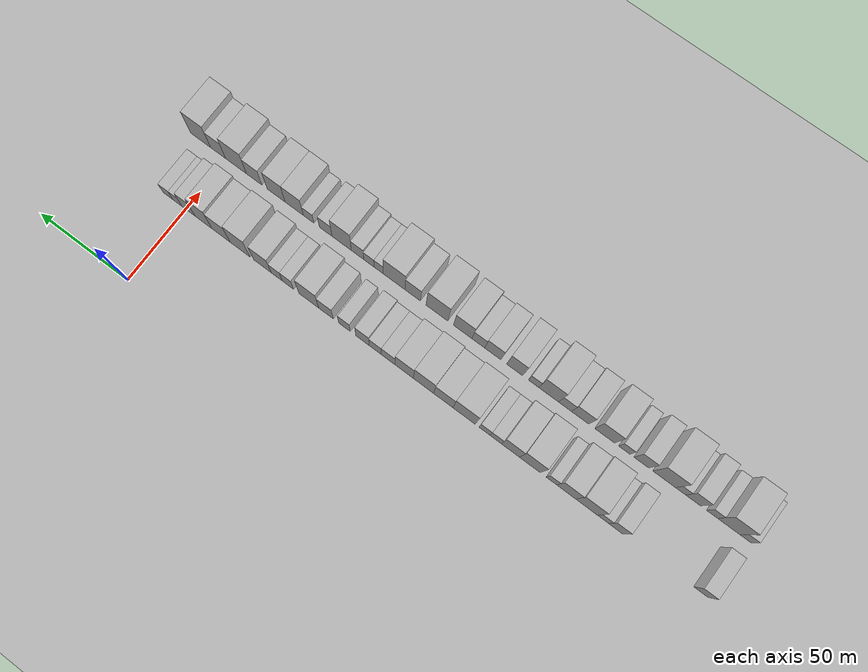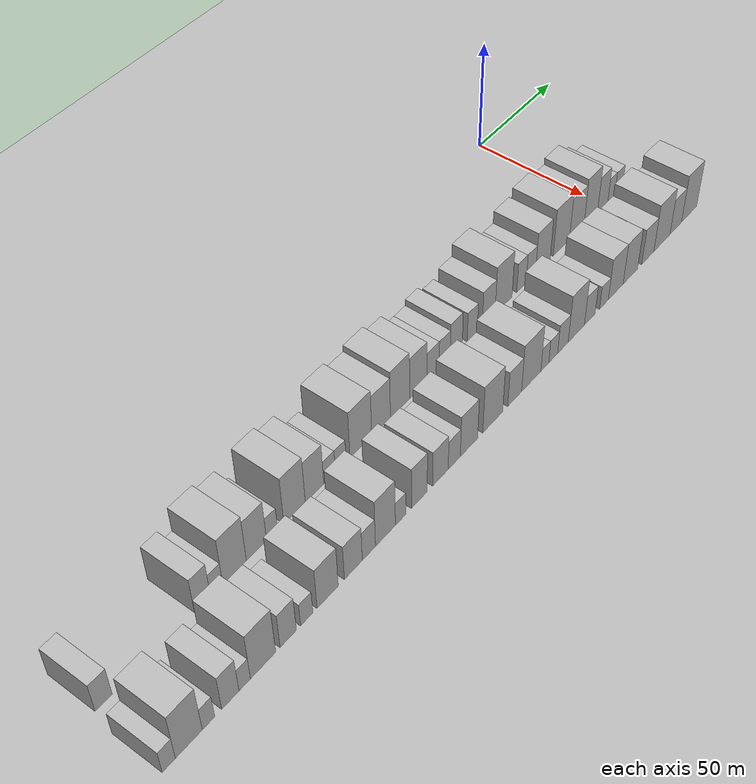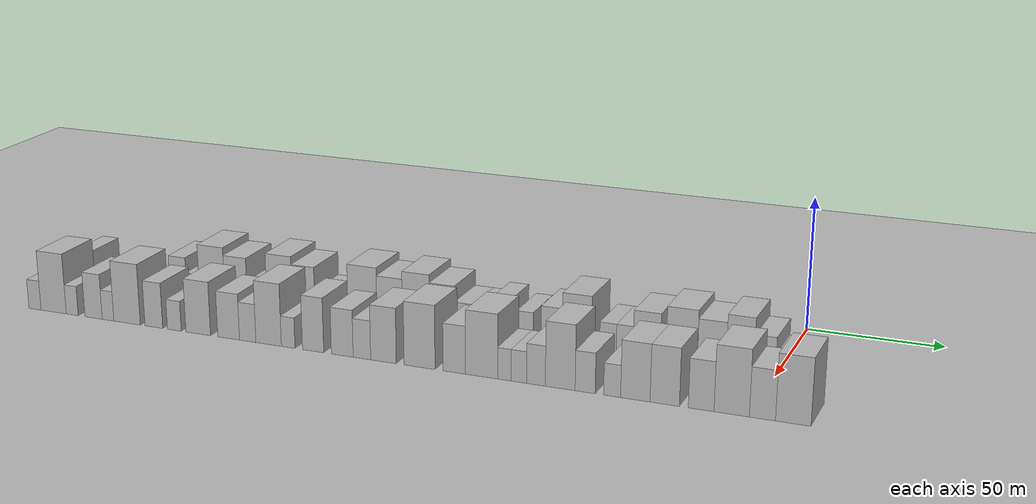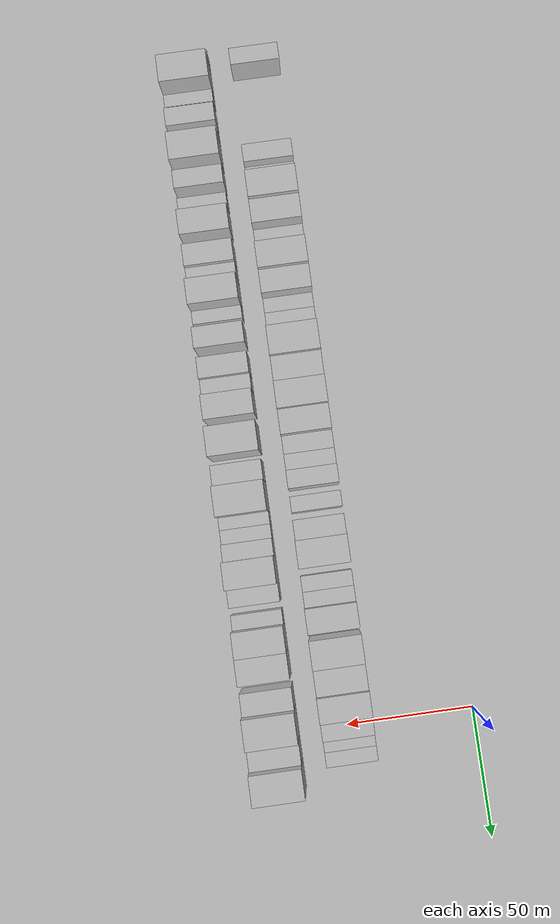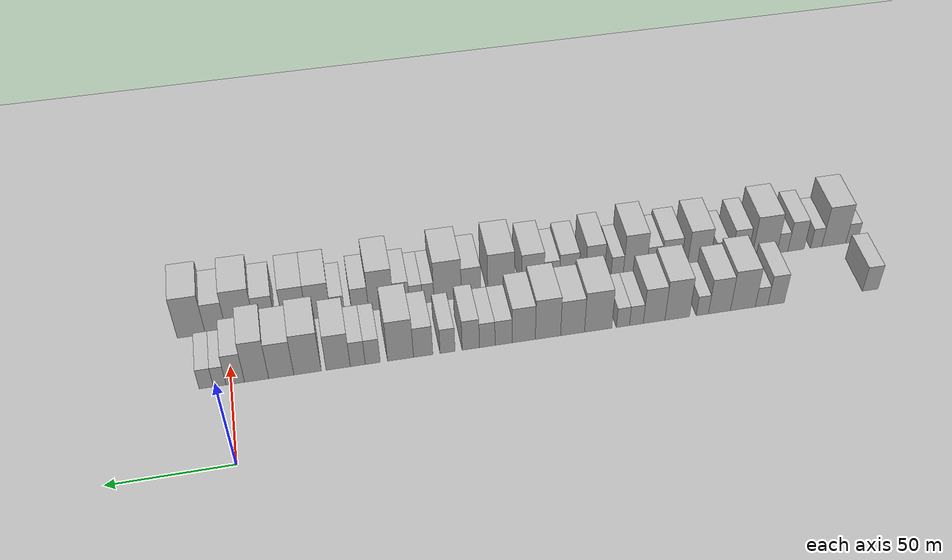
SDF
<sdf version="1.6">
 <world name="default">
  <include><name>ground_plane_1</name><uri>model://HANNAS_ground_plane</uri></include>
  <include>
   <name>ground_plane_2</name>
   <uri>model://HANNAS_ground_plane</uri>
   <pose>100 0 0  0 0 0</pose>
  </include>
  <model name="building_1">
   <static>1</static>
   <pose>50.0000 -272.4769 0 0.000000 0.000000 0.000000</pose>
   <link name="link">
    <pose>0 0 7.50 0 0 0</pose>
    <collision name="collision"><geometry><box><size>20.0000 7.0463 15.0000</size></box></geometry></collision>
    <visual name="visual">
     <cast_shadows>0</cast_shadows>
     <geometry><box><size>20.0000 7.0463 15.0000</size></box></geometry>
     <material>
      <script>
       <uri>model://HANNAS_wall/materials/scripts</uri>
       <uri>model://HANNAS_wall/materials/textures</uri>
       <name>vrc/HANNAS_wall</name>
      </script>
     </material>
    </visual>
   </link>
  </model>
  <model name="building_2">
   <static>1</static>
   <pose>50.0000 -230.0296 0 0.000000 0.000000 0.000000</pose>
   <link name="link">
    <pose>0 0 9.00 0 0 0</pose>
    <collision name="collision"><geometry><box><size>20.0000 7.2828 18.0000</size></box></geometry></collision>
    <visual name="visual">
     <cast_shadows>0</cast_shadows>
     <geometry><box><size>20.0000 7.2828 18.0000</size></box></geometry>
     <material>
      <script>
       <uri>model://HANNAS_wall/materials/scripts</uri>
       <uri>model://HANNAS_wall/materials/textures</uri>
       <name>vrc/HANNAS_wall</name>
      </script>
     </material>
    </visual>
   </link>
  </model>
  <model name="building_3">
   <static>1</static>
   <pose>50.0000 -223.5794 0 0.000000 0.000000 0.000000</pose>
   <link name="link">
    <pose>0 0 6.00 0 0 0</pose>
    <collision name="collision"><geometry><box><size>20.0000 5.6176 12.0000</size></box></geometry></collision>
    <visual name="visual">
     <cast_shadows>0</cast_shadows>
     <geometry><box><size>20.0000 5.6176 12.0000</size></box></geometry>
     <material>
      <script>
       <uri>model://HANNAS_wall/materials/scripts</uri>
       <uri>model://HANNAS_wall/materials/textures</uri>
       <name>vrc/HANNAS_wall</name>
      </script>
     </material>
    </visual>
   </link>
  </model>
  <model name="building_4">
   <static>1</static>
   <pose>50.0000 -215.2634 0 0.000000 0.000000 0.000000</pose>
   <link name="link">
    <pose>0 0 12.00 0 0 0</pose>
    <collision name="collision"><geometry><box><size>20.0000 11.0144 24.0000</size></box></geometry></collision>
    <visual name="visual">
     <cast_shadows>0</cast_shadows>
     <geometry><box><size>20.0000 11.0144 24.0000</size></box></geometry>
     <material>
      <script>
       <uri>model://HANNAS_wall/materials/scripts</uri>
       <uri>model://HANNAS_wall/materials/textures</uri>
       <name>vrc/HANNAS_wall</name>
      </script>
     </material>
    </visual>
   </link>
  </model>
  <model name="building_5">
   <static>1</static>
   <pose>50.0000 -204.9244 0 0.000000 0.000000 0.000000</pose>
   <link name="link">
    <pose>0 0 10.50 0 0 0</pose>
    <collision name="collision"><geometry><box><size>20.0000 9.6638 21.0000</size></box></geometry></collision>
    <visual name="visual">
     <cast_shadows>0</cast_shadows>
     <geometry><box><size>20.0000 9.6638 21.0000</size></box></geometry>
     <material>
      <script>
       <uri>model://HANNAS_wall/materials/scripts</uri>
       <uri>model://HANNAS_wall/materials/textures</uri>
       <name>vrc/HANNAS_wall</name>
      </script>
     </material>
    </visual>
   </link>
  </model>
  <model name="building_6">
   <static>1</static>
   <pose>50.0000 -197.4030 0 0.000000 0.000000 0.000000</pose>
   <link name="link">
    <pose>0 0 6.00 0 0 0</pose>
    <collision name="collision"><geometry><box><size>20.0000 5.3790 12.0000</size></box></geometry></collision>
    <visual name="visual">
     <cast_shadows>0</cast_shadows>
     <geometry><box><size>20.0000 5.3790 12.0000</size></box></geometry>
     <material>
      <script>
       <uri>model://HANNAS_wall/materials/scripts</uri>
       <uri>model://HANNAS_wall/materials/textures</uri>
       <name>vrc/HANNAS_wall</name>
      </script>
     </material>
    </visual>
   </link>
  </model>
  <model name="building_7">
   <static>1</static>
   <pose>50.0000 -186.3632 0 0.000000 0.000000 0.000000</pose>
   <link name="link">
    <pose>0 0 12.00 0 0 0</pose>
    <collision name="collision"><geometry><box><size>20.0000 10.7004 24.0000</size></box></geometry></collision>
    <visual name="visual">
     <cast_shadows>0</cast_shadows>
     <geometry><box><size>20.0000 10.7004 24.0000</size></box></geometry>
     <material>
      <script>
       <uri>model://HANNAS_wall/materials/scripts</uri>
       <uri>model://HANNAS_wall/materials/textures</uri>
       <name>vrc/HANNAS_wall</name>
      </script>
     </material>
    </visual>
   </link>
  </model>
  <model name="building_8">
   <static>1</static>
   <pose>50.0000 -176.3072 0 0.000000 0.000000 0.000000</pose>
   <link name="link">
    <pose>0 0 10.50 0 0 0</pose>
    <collision name="collision"><geometry><box><size>20.0000 9.4116 21.0000</size></box></geometry></collision>
    <visual name="visual">
     <cast_shadows>0</cast_shadows>
     <geometry><box><size>20.0000 9.4116 21.0000</size></box></geometry>
     <material>
      <script>
       <uri>model://HANNAS_wall/materials/scripts</uri>
       <uri>model://HANNAS_wall/materials/textures</uri>
       <name>vrc/HANNAS_wall</name>
      </script>
     </material>
    </visual>
   </link>
  </model>
  <model name="building_9">
   <static>1</static>
   <pose>50.0000 -168.6208 0 0.000000 0.000000 0.000000</pose>
   <link name="link">
    <pose>0 0 6.00 0 0 0</pose>
    <collision name="collision"><geometry><box><size>20.0000 5.9611 12.0000</size></box></geometry></collision>
    <visual name="visual">
     <cast_shadows>0</cast_shadows>
     <geometry><box><size>20.0000 5.9611 12.0000</size></box></geometry>
     <material>
      <script>
       <uri>model://HANNAS_wall/materials/scripts</uri>
       <uri>model://HANNAS_wall/materials/textures</uri>
       <name>vrc/HANNAS_wall</name>
      </script>
     </material>
    </visual>
   </link>
  </model>
  <model name="building_10">
   <static>1</static>
   <pose>50.0000 -162.8003 0 0.000000 0.000000 0.000000</pose>
   <link name="link">
    <pose>0 0 6.00 0 0 0</pose>
    <collision name="collision"><geometry><box><size>20.0000 5.6799 12.0000</size></box></geometry></collision>
    <visual name="visual">
     <cast_shadows>0</cast_shadows>
     <geometry><box><size>20.0000 5.6799 12.0000</size></box></geometry>
     <material>
      <script>
       <uri>model://HANNAS_wall/materials/scripts</uri>
       <uri>model://HANNAS_wall/materials/textures</uri>
       <name>vrc/HANNAS_wall</name>
      </script>
     </material>
    </visual>
   </link>
  </model>
  <model name="building_11">
   <static>1</static>
   <pose>50.0000 -152.1003 0 0.000000 0.000000 0.000000</pose>
   <link name="link">
    <pose>0 0 12.00 0 0 0</pose>
    <collision name="collision"><geometry><box><size>20.0000 11.7200 24.0000</size></box></geometry></collision>
    <visual name="visual">
     <cast_shadows>0</cast_shadows>
     <geometry><box><size>20.0000 11.7200 24.0000</size></box></geometry>
     <material>
      <script>
       <uri>model://HANNAS_wall/materials/scripts</uri>
       <uri>model://HANNAS_wall/materials/textures</uri>
       <name>vrc/HANNAS_wall</name>
      </script>
     </material>
    </visual>
   </link>
  </model>
  <model name="building_12">
   <static>1</static>
   <pose>50.0000 -141.1149 0 0.000000 0.000000 0.000000</pose>
   <link name="link">
    <pose>0 0 10.50 0 0 0</pose>
    <collision name="collision"><geometry><box><size>20.0000 10.2509 21.0000</size></box></geometry></collision>
    <visual name="visual">
     <cast_shadows>0</cast_shadows>
     <geometry><box><size>20.0000 10.2509 21.0000</size></box></geometry>
     <material>
      <script>
       <uri>model://HANNAS_wall/materials/scripts</uri>
       <uri>model://HANNAS_wall/materials/textures</uri>
       <name>vrc/HANNAS_wall</name>
      </script>
     </material>
    </visual>
   </link>
  </model>
  <model name="building_13">
   <static>1</static>
   <pose>50.0000 -130.6137 0 0.000000 0.000000 0.000000</pose>
   <link name="link">
    <pose>0 0 12.00 0 0 0</pose>
    <collision name="collision"><geometry><box><size>20.0000 10.7514 24.0000</size></box></geometry></collision>
    <visual name="visual">
     <cast_shadows>0</cast_shadows>
     <geometry><box><size>20.0000 10.7514 24.0000</size></box></geometry>
     <material>
      <script>
       <uri>model://HANNAS_wall/materials/scripts</uri>
       <uri>model://HANNAS_wall/materials/textures</uri>
       <name>vrc/HANNAS_wall</name>
      </script>
     </material>
    </visual>
   </link>
  </model>
  <model name="building_14">
   <static>1</static>
   <pose>50.0000 -120.3150 0 0.000000 0.000000 0.000000</pose>
   <link name="link">
    <pose>0 0 10.50 0 0 0</pose>
    <collision name="collision"><geometry><box><size>20.0000 9.8462 21.0000</size></box></geometry></collision>
    <visual name="visual">
     <cast_shadows>0</cast_shadows>
     <geometry><box><size>20.0000 9.8462 21.0000</size></box></geometry>
     <material>
      <script>
       <uri>model://HANNAS_wall/materials/scripts</uri>
       <uri>model://HANNAS_wall/materials/textures</uri>
       <name>vrc/HANNAS_wall</name>
      </script>
     </material>
    </visual>
   </link>
  </model>
  <model name="building_15">
   <static>1</static>
   <pose>50.0000 -111.7804 0 0.000000 0.000000 0.000000</pose>
   <link name="link">
    <pose>0 0 7.50 0 0 0</pose>
    <collision name="collision"><geometry><box><size>20.0000 7.2230 15.0000</size></box></geometry></collision>
    <visual name="visual">
     <cast_shadows>0</cast_shadows>
     <geometry><box><size>20.0000 7.2230 15.0000</size></box></geometry>
     <material>
      <script>
       <uri>model://HANNAS_wall/materials/scripts</uri>
       <uri>model://HANNAS_wall/materials/textures</uri>
       <name>vrc/HANNAS_wall</name>
      </script>
     </material>
    </visual>
   </link>
  </model>
  <model name="building_16">
   <static>1</static>
   <pose>50.0000 -104.9020 0 0.000000 0.000000 0.000000</pose>
   <link name="link">
    <pose>0 0 7.50 0 0 0</pose>
    <collision name="collision"><geometry><box><size>20.0000 6.5338 15.0000</size></box></geometry></collision>
    <visual name="visual">
     <cast_shadows>0</cast_shadows>
     <geometry><box><size>20.0000 6.5338 15.0000</size></box></geometry>
     <material>
      <script>
       <uri>model://HANNAS_wall/materials/scripts</uri>
       <uri>model://HANNAS_wall/materials/textures</uri>
       <name>vrc/HANNAS_wall</name>
      </script>
     </material>
    </visual>
   </link>
  </model>
  <model name="building_17">
   <static>1</static>
   <pose>50.0000 -98.0287 0 0.000000 0.000000 0.000000</pose>
   <link name="link">
    <pose>0 0 9.00 0 0 0</pose>
    <collision name="collision"><geometry><box><size>20.0000 7.2128 18.0000</size></box></geometry></collision>
    <visual name="visual">
     <cast_shadows>0</cast_shadows>
     <geometry><box><size>20.0000 7.2128 18.0000</size></box></geometry>
     <material>
      <script>
       <uri>model://HANNAS_wall/materials/scripts</uri>
       <uri>model://HANNAS_wall/materials/textures</uri>
       <name>vrc/HANNAS_wall</name>
      </script>
     </material>
    </visual>
   </link>
  </model>
  <model name="building_18">
   <static>1</static>
   <pose>50.0000 -88.2988 0 0.000000 0.000000 0.000000</pose>
   <link name="link">
    <pose>0 0 7.50 0 0 0</pose>
    <collision name="collision"><geometry><box><size>20.0000 6.2469 15.0000</size></box></geometry></collision>
    <visual name="visual">
     <cast_shadows>0</cast_shadows>
     <geometry><box><size>20.0000 6.2469 15.0000</size></box></geometry>
     <material>
      <script>
       <uri>model://HANNAS_wall/materials/scripts</uri>
       <uri>model://HANNAS_wall/materials/textures</uri>
       <name>vrc/HANNAS_wall</name>
      </script>
     </material>
    </visual>
   </link>
  </model>
  <model name="building_19">
   <static>1</static>
   <pose>50.0000 -78.1721 0 0.000000 0.000000 0.000000</pose>
   <link name="link">
    <pose>0 0 9.00 0 0 0</pose>
    <collision name="collision"><geometry><box><size>20.0000 8.0066 18.0000</size></box></geometry></collision>
    <visual name="visual">
     <cast_shadows>0</cast_shadows>
     <geometry><box><size>20.0000 8.0066 18.0000</size></box></geometry>
     <material>
      <script>
       <uri>model://HANNAS_wall/materials/scripts</uri>
       <uri>model://HANNAS_wall/materials/textures</uri>
       <name>vrc/HANNAS_wall</name>
      </script>
     </material>
    </visual>
   </link>
  </model>
  <model name="building_20">
   <static>1</static>
   <pose>50.0000 -68.7891 0 0.000000 0.000000 0.000000</pose>
   <link name="link">
    <pose>0 0 12.00 0 0 0</pose>
    <collision name="collision"><geometry><box><size>20.0000 10.7592 24.0000</size></box></geometry></collision>
    <visual name="visual">
     <cast_shadows>0</cast_shadows>
     <geometry><box><size>20.0000 10.7592 24.0000</size></box></geometry>
     <material>
      <script>
       <uri>model://HANNAS_wall/materials/scripts</uri>
       <uri>model://HANNAS_wall/materials/textures</uri>
       <name>vrc/HANNAS_wall</name>
      </script>
     </material>
    </visual>
   </link>
  </model>
  <model name="building_21">
   <static>1</static>
   <pose>50.0000 -57.3385 0 0.000000 0.000000 0.000000</pose>
   <link name="link">
    <pose>0 0 7.50 0 0 0</pose>
    <collision name="collision"><geometry><box><size>20.0000 6.1420 15.0000</size></box></geometry></collision>
    <visual name="visual">
     <cast_shadows>0</cast_shadows>
     <geometry><box><size>20.0000 6.1420 15.0000</size></box></geometry>
     <material>
      <script>
       <uri>model://HANNAS_wall/materials/scripts</uri>
       <uri>model://HANNAS_wall/materials/textures</uri>
       <name>vrc/HANNAS_wall</name>
      </script>
     </material>
    </visual>
   </link>
  </model>
  <model name="building_22">
   <static>1</static>
   <pose>50.0000 -51.1925 0 0.000000 0.000000 0.000000</pose>
   <link name="link">
    <pose>0 0 7.50 0 0 0</pose>
    <collision name="collision"><geometry><box><size>20.0000 6.1499 15.0000</size></box></geometry></collision>
    <visual name="visual">
     <cast_shadows>0</cast_shadows>
     <geometry><box><size>20.0000 6.1499 15.0000</size></box></geometry>
     <material>
      <script>
       <uri>model://HANNAS_wall/materials/scripts</uri>
       <uri>model://HANNAS_wall/materials/textures</uri>
       <name>vrc/HANNAS_wall</name>
      </script>
     </material>
    </visual>
   </link>
  </model>
  <model name="building_23">
   <static>1</static>
   <pose>50.0000 -43.2024 0 0.000000 0.000000 0.000000</pose>
   <link name="link">
    <pose>0 0 10.50 0 0 0</pose>
    <collision name="collision"><geometry><box><size>20.0000 9.8303 21.0000</size></box></geometry></collision>
    <visual name="visual">
     <cast_shadows>0</cast_shadows>
     <geometry><box><size>20.0000 9.8303 21.0000</size></box></geometry>
     <material>
      <script>
       <uri>model://HANNAS_wall/materials/scripts</uri>
       <uri>model://HANNAS_wall/materials/textures</uri>
       <name>vrc/HANNAS_wall</name>
      </script>
     </material>
    </visual>
   </link>
  </model>
  <model name="building_24">
   <static>1</static>
   <pose>50.0000 -30.7148 0 0.000000 0.000000 0.000000</pose>
   <link name="link">
    <pose>0 0 12.00 0 0 0</pose>
    <collision name="collision"><geometry><box><size>20.0000 11.1449 24.0000</size></box></geometry></collision>
    <visual name="visual">
     <cast_shadows>0</cast_shadows>
     <geometry><box><size>20.0000 11.1449 24.0000</size></box></geometry>
     <material>
      <script>
       <uri>model://HANNAS_wall/materials/scripts</uri>
       <uri>model://HANNAS_wall/materials/textures</uri>
       <name>vrc/HANNAS_wall</name>
      </script>
     </material>
    </visual>
   </link>
  </model>
  <model name="building_25">
   <static>1</static>
   <pose>50.0000 -20.0643 0 0.000000 0.000000 0.000000</pose>
   <link name="link">
    <pose>0 0 10.50 0 0 0</pose>
    <collision name="collision"><geometry><box><size>20.0000 10.1560 21.0000</size></box></geometry></collision>
    <visual name="visual">
     <cast_shadows>0</cast_shadows>
     <geometry><box><size>20.0000 10.1560 21.0000</size></box></geometry>
     <material>
      <script>
       <uri>model://HANNAS_wall/materials/scripts</uri>
       <uri>model://HANNAS_wall/materials/textures</uri>
       <name>vrc/HANNAS_wall</name>
      </script>
     </material>
    </visual>
   </link>
  </model>
  <model name="building_26">
   <static>1</static>
   <pose>50.0000 -10.1497 0 0.000000 0.000000 0.000000</pose>
   <link name="link">
    <pose>0 0 12.00 0 0 0</pose>
    <collision name="collision"><geometry><box><size>20.0000 9.6733 24.0000</size></box></geometry></collision>
    <visual name="visual">
     <cast_shadows>0</cast_shadows>
     <geometry><box><size>20.0000 9.6733 24.0000</size></box></geometry>
     <material>
      <script>
       <uri>model://HANNAS_wall/materials/scripts</uri>
       <uri>model://HANNAS_wall/materials/textures</uri>
       <name>vrc/HANNAS_wall</name>
      </script>
     </material>
    </visual>
   </link>
  </model>
  <model name="building_27">
   <static>1</static>
   <pose>50.0000 -1.5976 0 0.000000 0.000000 0.000000</pose>
   <link name="link">
    <pose>0 0 9.00 0 0 0</pose>
    <collision name="collision"><geometry><box><size>20.0000 7.4308 18.0000</size></box></geometry></collision>
    <visual name="visual">
     <cast_shadows>0</cast_shadows>
     <geometry><box><size>20.0000 7.4308 18.0000</size></box></geometry>
     <material>
      <script>
       <uri>model://HANNAS_wall/materials/scripts</uri>
       <uri>model://HANNAS_wall/materials/textures</uri>
       <name>vrc/HANNAS_wall</name>
      </script>
     </material>
    </visual>
   </link>
  </model>
  <model name="building_28">
   <static>1</static>
   <pose>50.0000 4.6349 0 0.000000 0.000000 0.000000</pose>
   <link name="link">
    <pose>0 0 6.00 0 0 0</pose>
    <collision name="collision"><geometry><box><size>20.0000 5.0342 12.0000</size></box></geometry></collision>
    <visual name="visual">
     <cast_shadows>0</cast_shadows>
     <geometry><box><size>20.0000 5.0342 12.0000</size></box></geometry>
     <material>
      <script>
       <uri>model://HANNAS_wall/materials/scripts</uri>
       <uri>model://HANNAS_wall/materials/textures</uri>
       <name>vrc/HANNAS_wall</name>
      </script>
     </material>
    </visual>
   </link>
  </model>
  <model name="building_29">
   <static>1</static>
   <pose>50.0000 9.9856 0 0.000000 0.000000 0.000000</pose>
   <link name="link">
    <pose>0 0 6.00 0 0 0</pose>
    <collision name="collision"><geometry><box><size>20.0000 5.6673 12.0000</size></box></geometry></collision>
    <visual name="visual">
     <cast_shadows>0</cast_shadows>
     <geometry><box><size>20.0000 5.6673 12.0000</size></box></geometry>
     <material>
      <script>
       <uri>model://HANNAS_wall/materials/scripts</uri>
       <uri>model://HANNAS_wall/materials/textures</uri>
       <name>vrc/HANNAS_wall</name>
      </script>
     </material>
    </visual>
   </link>
  </model>
  <model name="building_63">
   <static>1</static>
   <pose>79.0000 -275.2815 0 0.000000 0.000000 0.000000</pose>
   <link name="link">
    <pose>0 0 6.00 0 0 0</pose>
    <collision name="collision"><geometry><box><size>20.0000 5.4369 12.0000</size></box></geometry></collision>
    <visual name="visual">
     <cast_shadows>0</cast_shadows>
     <geometry><box><size>20.0000 5.4369 12.0000</size></box></geometry>
     <material>
      <script>
       <uri>model://HANNAS_wall/materials/scripts</uri>
       <uri>model://HANNAS_wall/materials/textures</uri>
       <name>vrc/HANNAS_wall</name>
      </script>
     </material>
    </visual>
   </link>
  </model>
  <model name="building_64">
   <static>1</static>
   <pose>79.0000 -266.9365 0 0.000000 0.000000 0.000000</pose>
   <link name="link">
    <pose>0 0 12.00 0 0 0</pose>
    <collision name="collision"><geometry><box><size>20.0000 11.2532 24.0000</size></box></geometry></collision>
    <visual name="visual">
     <cast_shadows>0</cast_shadows>
     <geometry><box><size>20.0000 11.2532 24.0000</size></box></geometry>
     <material>
      <script>
       <uri>model://HANNAS_wall/materials/scripts</uri>
       <uri>model://HANNAS_wall/materials/textures</uri>
       <name>vrc/HANNAS_wall</name>
      </script>
     </material>
    </visual>
   </link>
  </model>
  <model name="building_65">
   <static>1</static>
   <pose>79.0000 -258.6698 0 0.000000 0.000000 0.000000</pose>
   <link name="link">
    <pose>0 0 6.00 0 0 0</pose>
    <collision name="collision"><geometry><box><size>20.0000 5.2800 12.0000</size></box></geometry></collision>
    <visual name="visual">
     <cast_shadows>0</cast_shadows>
     <geometry><box><size>20.0000 5.2800 12.0000</size></box></geometry>
     <material>
      <script>
       <uri>model://HANNAS_wall/materials/scripts</uri>
       <uri>model://HANNAS_wall/materials/textures</uri>
       <name>vrc/HANNAS_wall</name>
      </script>
     </material>
    </visual>
   </link>
  </model>
  <model name="building_66">
   <static>1</static>
   <pose>79.0000 -249.2585 0 0.000000 0.000000 0.000000</pose>
   <link name="link">
    <pose>0 0 9.00 0 0 0</pose>
    <collision name="collision"><geometry><box><size>20.0000 7.5426 18.0000</size></box></geometry></collision>
    <visual name="visual">
     <cast_shadows>0</cast_shadows>
     <geometry><box><size>20.0000 7.5426 18.0000</size></box></geometry>
     <material>
      <script>
       <uri>model://HANNAS_wall/materials/scripts</uri>
       <uri>model://HANNAS_wall/materials/textures</uri>
       <name>vrc/HANNAS_wall</name>
      </script>
     </material>
    </visual>
   </link>
  </model>
  <model name="building_67">
   <static>1</static>
   <pose>79.0000 -242.9611 0 0.000000 0.000000 0.000000</pose>
   <link name="link">
    <pose>0 0 6.00 0 0 0</pose>
    <collision name="collision"><geometry><box><size>20.0000 5.0523 12.0000</size></box></geometry></collision>
    <visual name="visual">
     <cast_shadows>0</cast_shadows>
     <geometry><box><size>20.0000 5.0523 12.0000</size></box></geometry>
     <material>
      <script>
       <uri>model://HANNAS_wall/materials/scripts</uri>
       <uri>model://HANNAS_wall/materials/textures</uri>
       <name>vrc/HANNAS_wall</name>
      </script>
     </material>
    </visual>
   </link>
  </model>
  <model name="building_68">
   <static>1</static>
   <pose>79.0000 -234.7143 0 0.000000 0.000000 0.000000</pose>
   <link name="link">
    <pose>0 0 12.00 0 0 0</pose>
    <collision name="collision"><geometry><box><size>20.0000 11.4412 24.0000</size></box></geometry></collision>
    <visual name="visual">
     <cast_shadows>0</cast_shadows>
     <geometry><box><size>20.0000 11.4412 24.0000</size></box></geometry>
     <material>
      <script>
       <uri>model://HANNAS_wall/materials/scripts</uri>
       <uri>model://HANNAS_wall/materials/textures</uri>
       <name>vrc/HANNAS_wall</name>
      </script>
     </material>
    </visual>
   </link>
  </model>
  <model name="building_69">
   <static>1</static>
   <pose>79.0000 -223.2206 0 0.000000 0.000000 0.000000</pose>
   <link name="link">
    <pose>0 0 9.00 0 0 0</pose>
    <collision name="collision"><geometry><box><size>20.0000 7.5463 18.0000</size></box></geometry></collision>
    <visual name="visual">
     <cast_shadows>0</cast_shadows>
     <geometry><box><size>20.0000 7.5463 18.0000</size></box></geometry>
     <material>
      <script>
       <uri>model://HANNAS_wall/materials/scripts</uri>
       <uri>model://HANNAS_wall/materials/textures</uri>
       <name>vrc/HANNAS_wall</name>
      </script>
     </material>
    </visual>
   </link>
  </model>
  <model name="building_70">
   <static>1</static>
   <pose>79.0000 -214.5472 0 0.000000 0.000000 0.000000</pose>
   <link name="link">
    <pose>0 0 6.00 0 0 0</pose>
    <collision name="collision"><geometry><box><size>20.0000 5.8005 12.0000</size></box></geometry></collision>
    <visual name="visual">
     <cast_shadows>0</cast_shadows>
     <geometry><box><size>20.0000 5.8005 12.0000</size></box></geometry>
     <material>
      <script>
       <uri>model://HANNAS_wall/materials/scripts</uri>
       <uri>model://HANNAS_wall/materials/textures</uri>
       <name>vrc/HANNAS_wall</name>
      </script>
     </material>
    </visual>
   </link>
  </model>
  <model name="building_71">
   <static>1</static>
   <pose>79.0000 -204.5023 0 0.000000 0.000000 0.000000</pose>
   <link name="link">
    <pose>0 0 10.50 0 0 0</pose>
    <collision name="collision"><geometry><box><size>20.0000 10.2892 21.0000</size></box></geometry></collision>
    <visual name="visual">
     <cast_shadows>0</cast_shadows>
     <geometry><box><size>20.0000 10.2892 21.0000</size></box></geometry>
     <material>
      <script>
       <uri>model://HANNAS_wall/materials/scripts</uri>
       <uri>model://HANNAS_wall/materials/textures</uri>
       <name>vrc/HANNAS_wall</name>
      </script>
     </material>
    </visual>
   </link>
  </model>
  <model name="building_72">
   <static>1</static>
   <pose>79.0000 -191.8813 0 0.000000 0.000000 0.000000</pose>
   <link name="link">
    <pose>0 0 9.00 0 0 0</pose>
    <collision name="collision"><geometry><box><size>20.0000 8.9528 18.0000</size></box></geometry></collision>
    <visual name="visual">
     <cast_shadows>0</cast_shadows>
     <geometry><box><size>20.0000 8.9528 18.0000</size></box></geometry>
     <material>
      <script>
       <uri>model://HANNAS_wall/materials/scripts</uri>
       <uri>model://HANNAS_wall/materials/textures</uri>
       <name>vrc/HANNAS_wall</name>
      </script>
     </material>
    </visual>
   </link>
  </model>
  <model name="building_73">
   <static>1</static>
   <pose>79.0000 -184.0543 0 0.000000 0.000000 0.000000</pose>
   <link name="link">
    <pose>0 0 7.50 0 0 0</pose>
    <collision name="collision"><geometry><box><size>20.0000 6.7013 15.0000</size></box></geometry></collision>
    <visual name="visual">
     <cast_shadows>0</cast_shadows>
     <geometry><box><size>20.0000 6.7013 15.0000</size></box></geometry>
     <material>
      <script>
       <uri>model://HANNAS_wall/materials/scripts</uri>
       <uri>model://HANNAS_wall/materials/textures</uri>
       <name>vrc/HANNAS_wall</name>
      </script>
     </material>
    </visual>
   </link>
  </model>
  <model name="building_74">
   <static>1</static>
   <pose>79.0000 -175.5456 0 0.000000 0.000000 0.000000</pose>
   <link name="link">
    <pose>0 0 12.00 0 0 0</pose>
    <collision name="collision"><geometry><box><size>20.0000 10.3162 24.0000</size></box></geometry></collision>
    <visual name="visual">
     <cast_shadows>0</cast_shadows>
     <geometry><box><size>20.0000 10.3162 24.0000</size></box></geometry>
     <material>
      <script>
       <uri>model://HANNAS_wall/materials/scripts</uri>
       <uri>model://HANNAS_wall/materials/textures</uri>
       <name>vrc/HANNAS_wall</name>
      </script>
     </material>
    </visual>
   </link>
  </model>
  <model name="building_75">
   <static>1</static>
   <pose>79.0000 -167.6555 0 0.000000 0.000000 0.000000</pose>
   <link name="link">
    <pose>0 0 6.00 0 0 0</pose>
    <collision name="collision"><geometry><box><size>20.0000 5.4639 12.0000</size></box></geometry></collision>
    <visual name="visual">
     <cast_shadows>0</cast_shadows>
     <geometry><box><size>20.0000 5.4639 12.0000</size></box></geometry>
     <material>
      <script>
       <uri>model://HANNAS_wall/materials/scripts</uri>
       <uri>model://HANNAS_wall/materials/textures</uri>
       <name>vrc/HANNAS_wall</name>
      </script>
     </material>
    </visual>
   </link>
  </model>
  <model name="building_76">
   <static>1</static>
   <pose>79.0000 -157.6912 0 0.000000 0.000000 0.000000</pose>
   <link name="link">
    <pose>0 0 10.50 0 0 0</pose>
    <collision name="collision"><geometry><box><size>20.0000 8.4647 21.0000</size></box></geometry></collision>
    <visual name="visual">
     <cast_shadows>0</cast_shadows>
     <geometry><box><size>20.0000 8.4647 21.0000</size></box></geometry>
     <material>
      <script>
       <uri>model://HANNAS_wall/materials/scripts</uri>
       <uri>model://HANNAS_wall/materials/textures</uri>
       <name>vrc/HANNAS_wall</name>
      </script>
     </material>
    </visual>
   </link>
  </model>
  <model name="building_77">
   <static>1</static>
   <pose>79.0000 -146.1789 0 0.000000 0.000000 0.000000</pose>
   <link name="link">
    <pose>0 0 9.00 0 0 0</pose>
    <collision name="collision"><geometry><box><size>20.0000 8.5598 18.0000</size></box></geometry></collision>
    <visual name="visual">
     <cast_shadows>0</cast_shadows>
     <geometry><box><size>20.0000 8.5598 18.0000</size></box></geometry>
     <material>
      <script>
       <uri>model://HANNAS_wall/materials/scripts</uri>
       <uri>model://HANNAS_wall/materials/textures</uri>
       <name>vrc/HANNAS_wall</name>
      </script>
     </material>
    </visual>
   </link>
  </model>
  <model name="building_78">
   <static>1</static>
   <pose>79.0000 -138.5006 0 0.000000 0.000000 0.000000</pose>
   <link name="link">
    <pose>0 0 7.50 0 0 0</pose>
    <collision name="collision"><geometry><box><size>20.0000 6.7967 15.0000</size></box></geometry></collision>
    <visual name="visual">
     <cast_shadows>0</cast_shadows>
     <geometry><box><size>20.0000 6.7967 15.0000</size></box></geometry>
     <material>
      <script>
       <uri>model://HANNAS_wall/materials/scripts</uri>
       <uri>model://HANNAS_wall/materials/textures</uri>
       <name>vrc/HANNAS_wall</name>
      </script>
     </material>
    </visual>
   </link>
  </model>
  <model name="building_79">
   <static>1</static>
   <pose>79.0000 -130.1603 0 0.000000 0.000000 0.000000</pose>
   <link name="link">
    <pose>0 0 10.50 0 0 0</pose>
    <collision name="collision"><geometry><box><size>20.0000 9.8841 21.0000</size></box></geometry></collision>
    <visual name="visual">
     <cast_shadows>0</cast_shadows>
     <geometry><box><size>20.0000 9.8841 21.0000</size></box></geometry>
     <material>
      <script>
       <uri>model://HANNAS_wall/materials/scripts</uri>
       <uri>model://HANNAS_wall/materials/textures</uri>
       <name>vrc/HANNAS_wall</name>
      </script>
     </material>
    </visual>
   </link>
  </model>
  <model name="building_80">
   <static>1</static>
   <pose>79.0000 -116.3509 0 0.000000 0.000000 0.000000</pose>
   <link name="link">
    <pose>0 0 12.00 0 0 0</pose>
    <collision name="collision"><geometry><box><size>20.0000 11.7347 24.0000</size></box></geometry></collision>
    <visual name="visual">
     <cast_shadows>0</cast_shadows>
     <geometry><box><size>20.0000 11.7347 24.0000</size></box></geometry>
     <material>
      <script>
       <uri>model://HANNAS_wall/materials/scripts</uri>
       <uri>model://HANNAS_wall/materials/textures</uri>
       <name>vrc/HANNAS_wall</name>
      </script>
     </material>
    </visual>
   </link>
  </model>
  <model name="building_81">
   <static>1</static>
   <pose>79.0000 -103.3023 0 0.000000 0.000000 0.000000</pose>
   <link name="link">
    <pose>0 0 9.00 0 0 0</pose>
    <collision name="collision"><geometry><box><size>20.0000 8.3624 18.0000</size></box></geometry></collision>
    <visual name="visual">
     <cast_shadows>0</cast_shadows>
     <geometry><box><size>20.0000 8.3624 18.0000</size></box></geometry>
     <material>
      <script>
       <uri>model://HANNAS_wall/materials/scripts</uri>
       <uri>model://HANNAS_wall/materials/textures</uri>
       <name>vrc/HANNAS_wall</name>
      </script>
     </material>
    </visual>
   </link>
  </model>
  <model name="building_82">
   <static>1</static>
   <pose>79.0000 -93.1857 0 0.000000 0.000000 0.000000</pose>
   <link name="link">
    <pose>0 0 12.00 0 0 0</pose>
    <collision name="collision"><geometry><box><size>20.0000 11.8708 24.0000</size></box></geometry></collision>
    <visual name="visual">
     <cast_shadows>0</cast_shadows>
     <geometry><box><size>20.0000 11.8708 24.0000</size></box></geometry>
     <material>
      <script>
       <uri>model://HANNAS_wall/materials/scripts</uri>
       <uri>model://HANNAS_wall/materials/textures</uri>
       <name>vrc/HANNAS_wall</name>
      </script>
     </material>
    </visual>
   </link>
  </model>
  <model name="building_83">
   <static>1</static>
   <pose>79.0000 -84.7539 0 0.000000 0.000000 0.000000</pose>
   <link name="link">
    <pose>0 0 6.00 0 0 0</pose>
    <collision name="collision"><geometry><box><size>20.0000 4.9928 12.0000</size></box></geometry></collision>
    <visual name="visual">
     <cast_shadows>0</cast_shadows>
     <geometry><box><size>20.0000 4.9928 12.0000</size></box></geometry>
     <material>
      <script>
       <uri>model://HANNAS_wall/materials/scripts</uri>
       <uri>model://HANNAS_wall/materials/textures</uri>
       <name>vrc/HANNAS_wall</name>
      </script>
     </material>
    </visual>
   </link>
  </model>
  <model name="building_84">
   <static>1</static>
   <pose>79.0000 -79.4468 0 0.000000 0.000000 0.000000</pose>
   <link name="link">
    <pose>0 0 6.00 0 0 0</pose>
    <collision name="collision"><geometry><box><size>20.0000 5.6214 12.0000</size></box></geometry></collision>
    <visual name="visual">
     <cast_shadows>0</cast_shadows>
     <geometry><box><size>20.0000 5.6214 12.0000</size></box></geometry>
     <material>
      <script>
       <uri>model://HANNAS_wall/materials/scripts</uri>
       <uri>model://HANNAS_wall/materials/textures</uri>
       <name>vrc/HANNAS_wall</name>
      </script>
     </material>
    </visual>
   </link>
  </model>
  <model name="building_85">
   <static>1</static>
   <pose>79.0000 -73.2430 0 0.000000 0.000000 0.000000</pose>
   <link name="link">
    <pose>0 0 7.50 0 0 0</pose>
    <collision name="collision"><geometry><box><size>20.0000 6.7861 15.0000</size></box></geometry></collision>
    <visual name="visual">
     <cast_shadows>0</cast_shadows>
     <geometry><box><size>20.0000 6.7861 15.0000</size></box></geometry>
     <material>
      <script>
       <uri>model://HANNAS_wall/materials/scripts</uri>
       <uri>model://HANNAS_wall/materials/textures</uri>
       <name>vrc/HANNAS_wall</name>
      </script>
     </material>
    </visual>
   </link>
  </model>
  <model name="building_86">
   <static>1</static>
   <pose>79.0000 -64.5287 0 0.000000 0.000000 0.000000</pose>
   <link name="link">
    <pose>0 0 12.00 0 0 0</pose>
    <collision name="collision"><geometry><box><size>20.0000 10.6425 24.0000</size></box></geometry></collision>
    <visual name="visual">
     <cast_shadows>0</cast_shadows>
     <geometry><box><size>20.0000 10.6425 24.0000</size></box></geometry>
     <material>
      <script>
       <uri>model://HANNAS_wall/materials/scripts</uri>
       <uri>model://HANNAS_wall/materials/textures</uri>
       <name>vrc/HANNAS_wall</name>
      </script>
     </material>
    </visual>
   </link>
  </model>
  <model name="building_87">
   <static>1</static>
   <pose>79.0000 -55.6554 0 0.000000 0.000000 0.000000</pose>
   <link name="link">
    <pose>0 0 7.50 0 0 0</pose>
    <collision name="collision"><geometry><box><size>20.0000 7.1042 15.0000</size></box></geometry></collision>
    <visual name="visual">
     <cast_shadows>0</cast_shadows>
     <geometry><box><size>20.0000 7.1042 15.0000</size></box></geometry>
     <material>
      <script>
       <uri>model://HANNAS_wall/materials/scripts</uri>
       <uri>model://HANNAS_wall/materials/textures</uri>
       <name>vrc/HANNAS_wall</name>
      </script>
     </material>
    </visual>
   </link>
  </model>
  <model name="building_88">
   <static>1</static>
   <pose>79.0000 -46.1413 0 0.000000 0.000000 0.000000</pose>
   <link name="link">
    <pose>0 0 6.00 0 0 0</pose>
    <collision name="collision"><geometry><box><size>20.0000 5.9240 12.0000</size></box></geometry></collision>
    <visual name="visual">
     <cast_shadows>0</cast_shadows>
     <geometry><box><size>20.0000 5.9240 12.0000</size></box></geometry>
     <material>
      <script>
       <uri>model://HANNAS_wall/materials/scripts</uri>
       <uri>model://HANNAS_wall/materials/textures</uri>
       <name>vrc/HANNAS_wall</name>
      </script>
     </material>
    </visual>
   </link>
  </model>
  <model name="building_89">
   <static>1</static>
   <pose>79.0000 -38.0681 0 0.000000 0.000000 0.000000</pose>
   <link name="link">
    <pose>0 0 10.50 0 0 0</pose>
    <collision name="collision"><geometry><box><size>20.0000 10.2223 21.0000</size></box></geometry></collision>
    <visual name="visual">
     <cast_shadows>0</cast_shadows>
     <geometry><box><size>20.0000 10.2223 21.0000</size></box></geometry>
     <material>
      <script>
       <uri>model://HANNAS_wall/materials/scripts</uri>
       <uri>model://HANNAS_wall/materials/textures</uri>
       <name>vrc/HANNAS_wall</name>
      </script>
     </material>
    </visual>
   </link>
  </model>
  <model name="building_90">
   <static>1</static>
   <pose>79.0000 -27.9151 0 0.000000 0.000000 0.000000</pose>
   <link name="link">
    <pose>0 0 10.50 0 0 0</pose>
    <collision name="collision"><geometry><box><size>20.0000 10.0837 21.0000</size></box></geometry></collision>
    <visual name="visual">
     <cast_shadows>0</cast_shadows>
     <geometry><box><size>20.0000 10.0837 21.0000</size></box></geometry>
     <material>
      <script>
       <uri>model://HANNAS_wall/materials/scripts</uri>
       <uri>model://HANNAS_wall/materials/textures</uri>
       <name>vrc/HANNAS_wall</name>
      </script>
     </material>
    </visual>
   </link>
  </model>
  <model name="building_91">
   <static>1</static>
   <pose>79.0000 -15.5219 0 0.000000 0.000000 0.000000</pose>
   <link name="link">
    <pose>0 0 9.00 0 0 0</pose>
    <collision name="collision"><geometry><box><size>20.0000 8.7028 18.0000</size></box></geometry></collision>
    <visual name="visual">
     <cast_shadows>0</cast_shadows>
     <geometry><box><size>20.0000 8.7028 18.0000</size></box></geometry>
     <material>
      <script>
       <uri>model://HANNAS_wall/materials/scripts</uri>
       <uri>model://HANNAS_wall/materials/textures</uri>
       <name>vrc/HANNAS_wall</name>
      </script>
     </material>
    </visual>
   </link>
  </model>
  <model name="building_92">
   <static>1</static>
   <pose>79.0000 -5.2581 0 0.000000 0.000000 0.000000</pose>
   <link name="link">
    <pose>0 0 12.00 0 0 0</pose>
    <collision name="collision"><geometry><box><size>20.0000 11.8248 24.0000</size></box></geometry></collision>
    <visual name="visual">
     <cast_shadows>0</cast_shadows>
     <geometry><box><size>20.0000 11.8248 24.0000</size></box></geometry>
     <material>
      <script>
       <uri>model://HANNAS_wall/materials/scripts</uri>
       <uri>model://HANNAS_wall/materials/textures</uri>
       <name>vrc/HANNAS_wall</name>
      </script>
     </material>
    </visual>
   </link>
  </model>
  <model name="building_93">
   <static>1</static>
   <pose>79.0000 4.9552 0 0.000000 0.000000 0.000000</pose>
   <link name="link">
    <pose>0 0 9.00 0 0 0</pose>
    <collision name="collision"><geometry><box><size>20.0000 8.6018 18.0000</size></box></geometry></collision>
    <visual name="visual">
     <cast_shadows>0</cast_shadows>
     <geometry><box><size>20.0000 8.6018 18.0000</size></box></geometry>
     <material>
      <script>
       <uri>model://HANNAS_wall/materials/scripts</uri>
       <uri>model://HANNAS_wall/materials/textures</uri>
       <name>vrc/HANNAS_wall</name>
      </script>
     </material>
    </visual>
   </link>
  </model>
  <model name="building_94">
   <static>1</static>
   <pose>79.0000 15.0483 0 0.000000 0.000000 0.000000</pose>
   <link name="link">
    <pose>0 0 12.00 0 0 0</pose>
    <collision name="collision"><geometry><box><size>20.0000 11.5844 24.0000</size></box></geometry></collision>
    <visual name="visual">
     <cast_shadows>0</cast_shadows>
     <geometry><box><size>20.0000 11.5844 24.0000</size></box></geometry>
     <material>
      <script>
       <uri>model://HANNAS_wall/materials/scripts</uri>
       <uri>model://HANNAS_wall/materials/textures</uri>
       <name>vrc/HANNAS_wall</name>
      </script>
     </material>
    </visual>
   </link>
  </model>
 </world>
</sdf>
